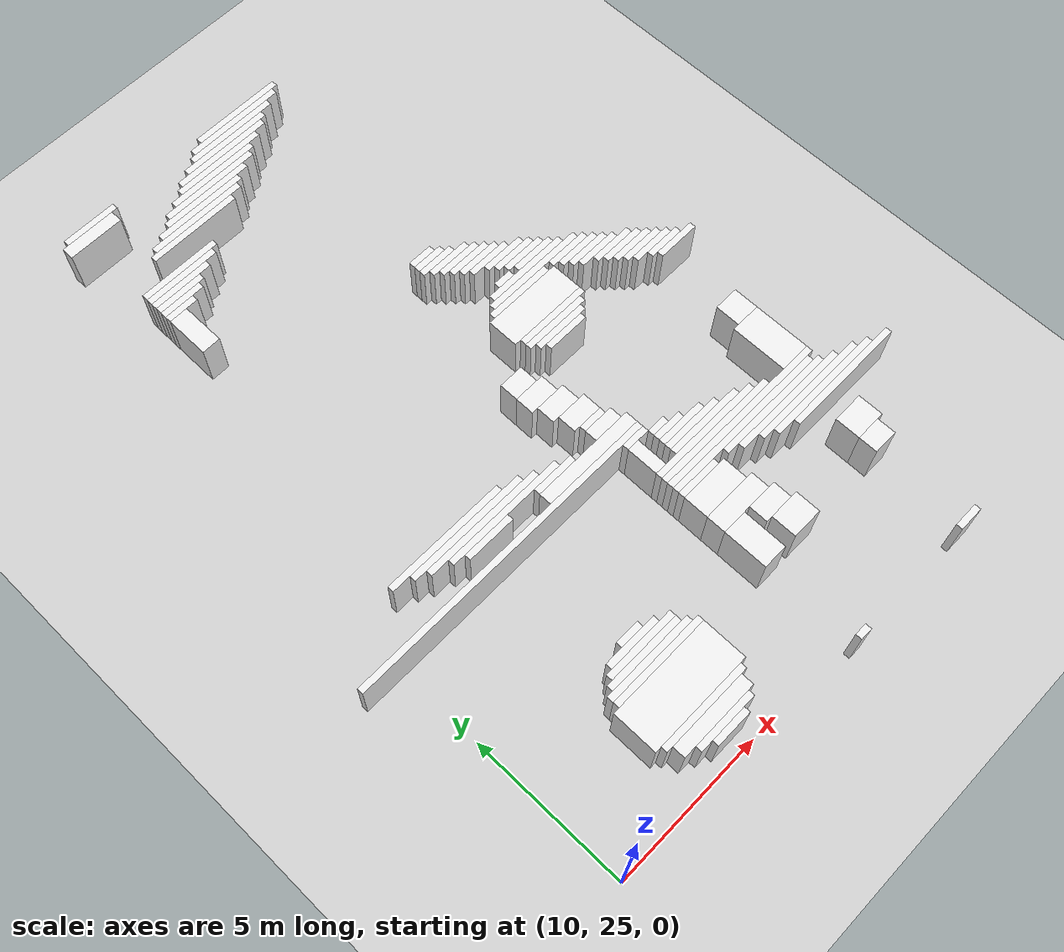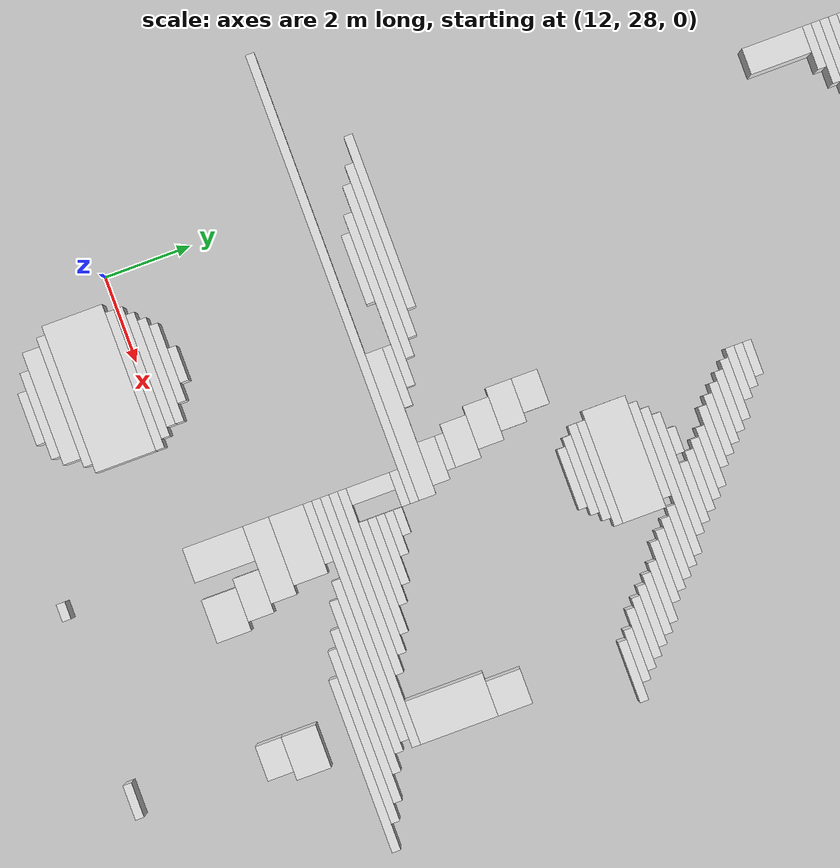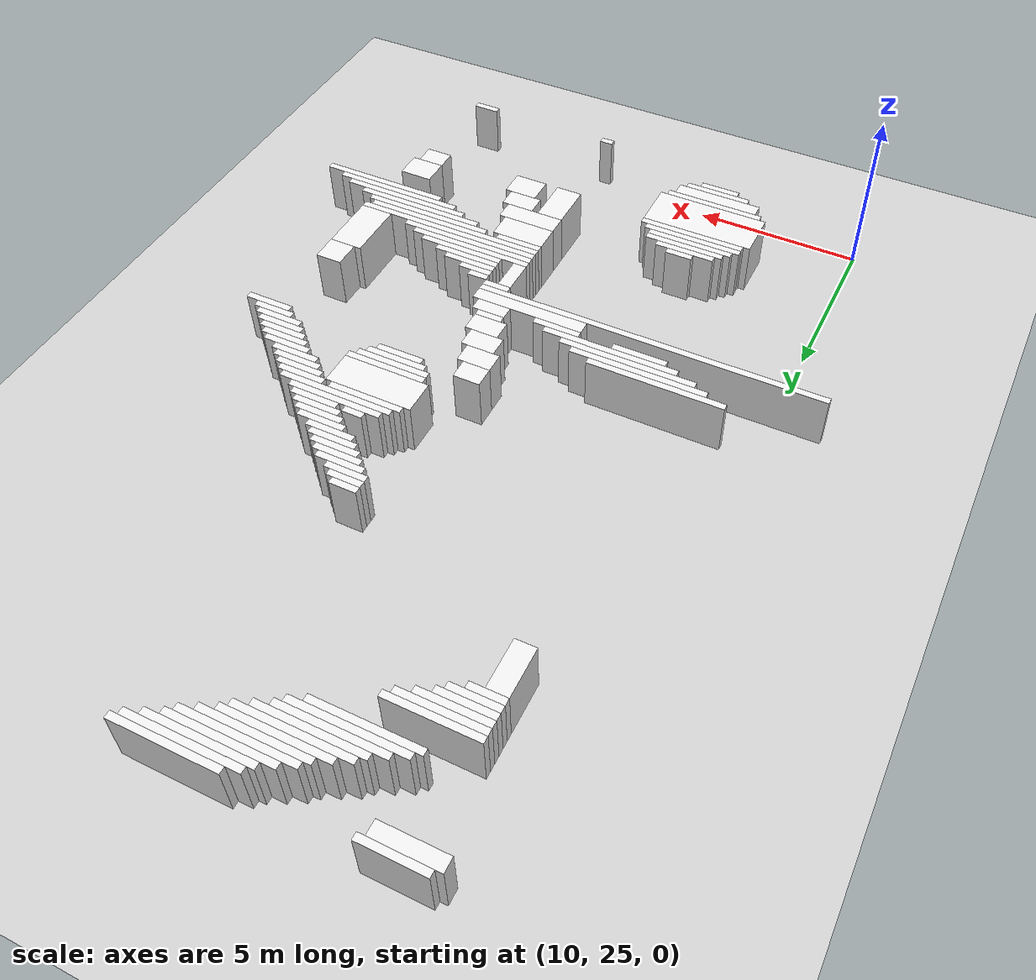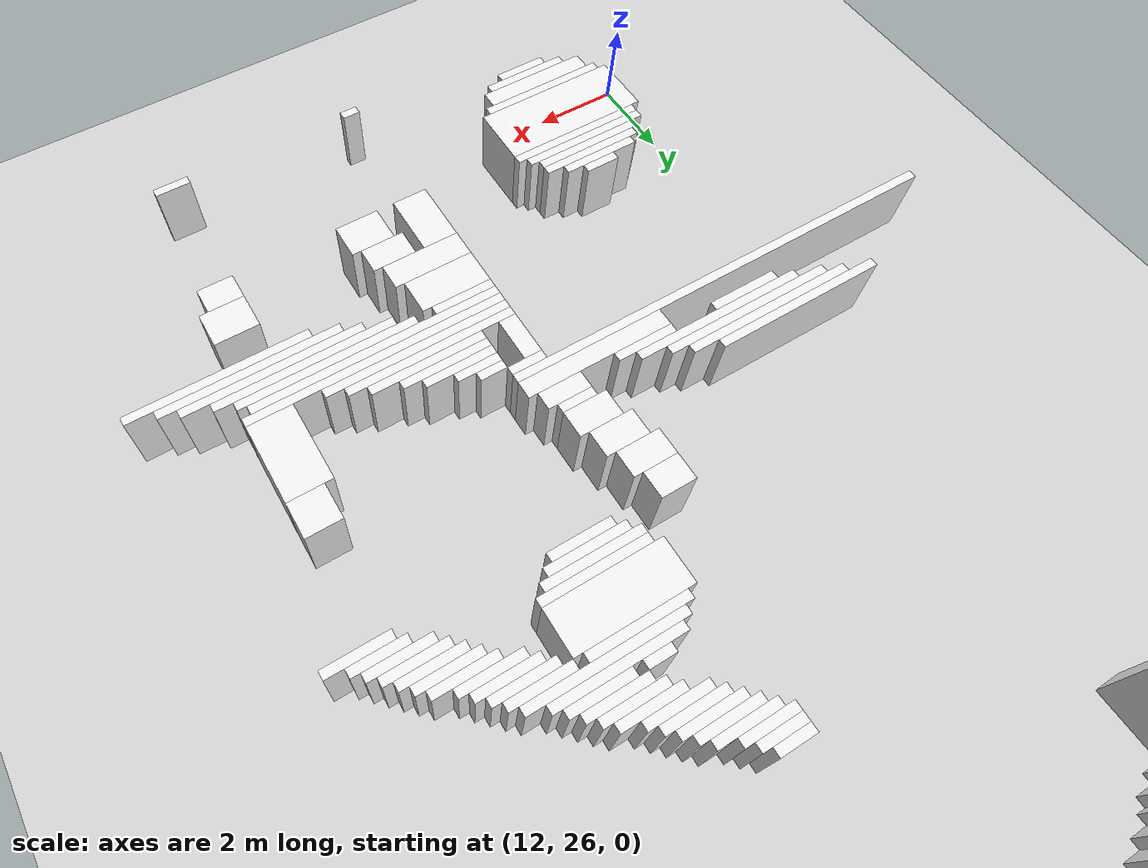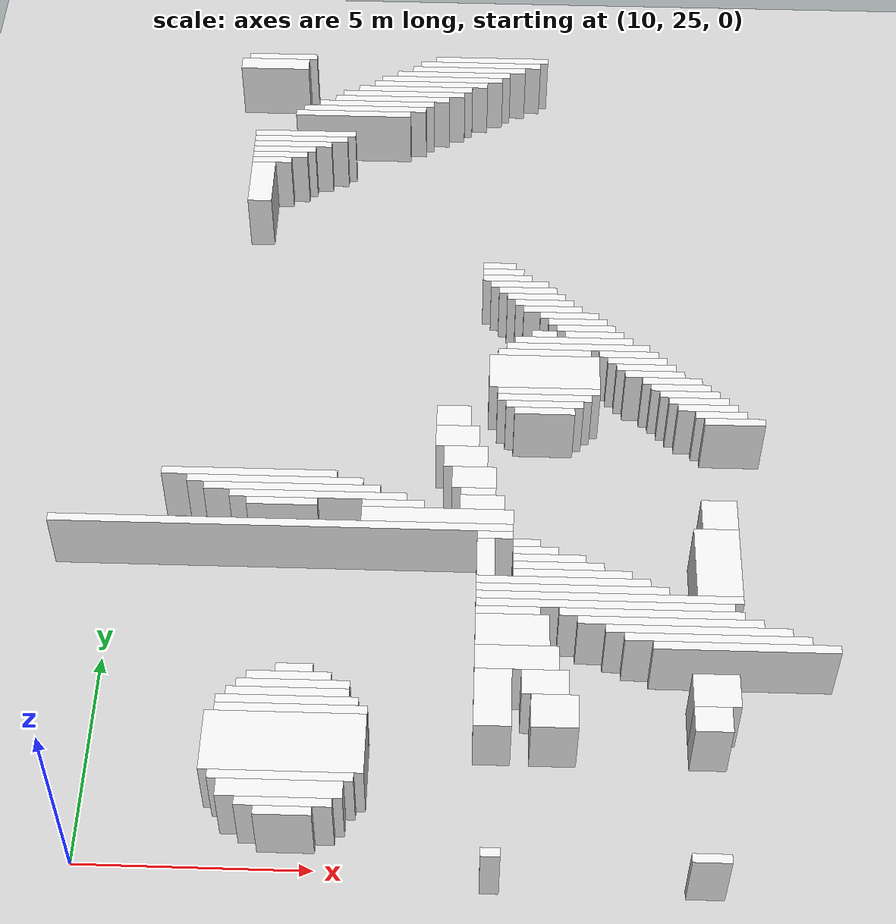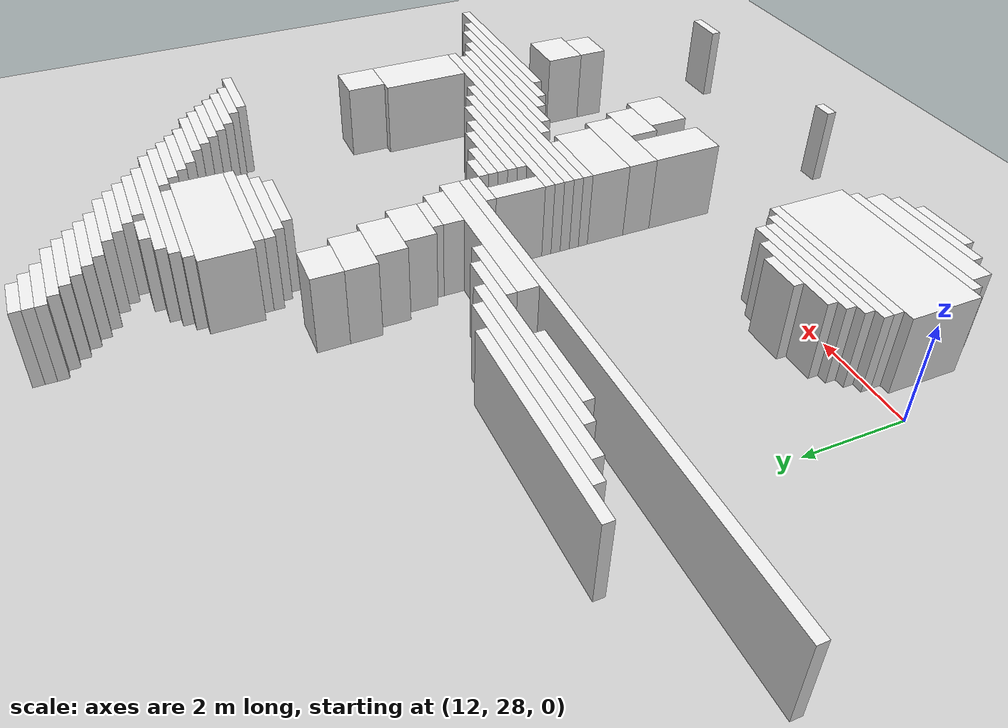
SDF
<sdf version="1.7">
 <world name="default">
  <model name="ground_plane">
   <static>1</static>
   <link name="link">
    <collision name="collision">
     <geometry><plane><normal>0 0 1</normal><size>120 120</size></plane></geometry>
    </collision>
    <visual name="visual">
     <geometry><plane><normal>0 0 1</normal><size>120 120</size></plane></geometry>
     <material>
      <script><uri>file://media/materials/scripts/gazebo.material</uri><name>Gazebo/Grey</name></script>
     </material>
    </visual>
   </link>
  </model>
  <model name="random_complex_02_model">
   <static>1</static>
   <link name="obs_4">
    <pose>12.7000 48.3000 0.8000 0 0 0</pose>
    <collision name="obs_4_col"><geometry><box><size>1.8000 0.2000 1.6000</size></box></geometry></collision>
    <visual name="obs_4_vis">
     <geometry><box><size>1.8000 0.2000 1.6000</size></box></geometry>
     <material>
      <script><uri>file://media/materials/scripts/gazebo.material</uri><name>Gazebo/White</name></script>
     </material>
    </visual>
   </link>
   <link name="obs_5">
    <pose>18.3000 48.3000 0.8000 0 0 0</pose>
    <collision name="obs_5_col"><geometry><box><size>3.0000 0.2000 1.6000</size></box></geometry></collision>
    <visual name="obs_5_vis">
     <geometry><box><size>3.0000 0.2000 1.6000</size></box></geometry>
     <material>
      <script><uri>file://media/materials/scripts/gazebo.material</uri><name>Gazebo/White</name></script>
     </material>
    </visual>
   </link>
   <link name="obs_9">
    <pose>18.0000 48.1000 0.8000 0 0 0</pose>
    <collision name="obs_9_col"><geometry><box><size>3.2000 0.2000 1.6000</size></box></geometry></collision>
    <visual name="obs_9_vis">
     <geometry><box><size>3.2000 0.2000 1.6000</size></box></geometry>
     <material>
      <script><uri>file://media/materials/scripts/gazebo.material</uri><name>Gazebo/White</name></script>
     </material>
    </visual>
   </link>
   <link name="obs_11">
    <pose>12.5000 48.0000 0.8000 0 0 0</pose>
    <collision name="obs_11_col"><geometry><box><size>1.8000 0.4000 1.6000</size></box></geometry></collision>
    <visual name="obs_11_vis">
     <geometry><box><size>1.8000 0.4000 1.6000</size></box></geometry>
     <material>
      <script><uri>file://media/materials/scripts/gazebo.material</uri><name>Gazebo/White</name></script>
     </material>
    </visual>
   </link>
   <link name="obs_16">
    <pose>17.7000 47.9000 0.8000 0 0 0</pose>
    <collision name="obs_16_col"><geometry><box><size>3.0000 0.2000 1.6000</size></box></geometry></collision>
    <visual name="obs_16_vis">
     <geometry><box><size>3.0000 0.2000 1.6000</size></box></geometry>
     <material>
      <script><uri>file://media/materials/scripts/gazebo.material</uri><name>Gazebo/White</name></script>
     </material>
    </visual>
   </link>
   <link name="obs_23">
    <pose>17.3000 47.7000 0.8000 0 0 0</pose>
    <collision name="obs_23_col"><geometry><box><size>3.0000 0.2000 1.6000</size></box></geometry></collision>
    <visual name="obs_23_vis">
     <geometry><box><size>3.0000 0.2000 1.6000</size></box></geometry>
     <material>
      <script><uri>file://media/materials/scripts/gazebo.material</uri><name>Gazebo/White</name></script>
     </material>
    </visual>
   </link>
   <link name="obs_31">
    <pose>17.0000 47.5000 0.8000 0 0 0</pose>
    <collision name="obs_31_col"><geometry><box><size>3.2000 0.2000 1.6000</size></box></geometry></collision>
    <visual name="obs_31_vis">
     <geometry><box><size>3.2000 0.2000 1.6000</size></box></geometry>
     <material>
      <script><uri>file://media/materials/scripts/gazebo.material</uri><name>Gazebo/White</name></script>
     </material>
    </visual>
   </link>
   <link name="obs_38">
    <pose>16.7000 47.3000 0.8000 0 0 0</pose>
    <collision name="obs_38_col"><geometry><box><size>3.0000 0.2000 1.6000</size></box></geometry></collision>
    <visual name="obs_38_vis">
     <geometry><box><size>3.0000 0.2000 1.6000</size></box></geometry>
     <material>
      <script><uri>file://media/materials/scripts/gazebo.material</uri><name>Gazebo/White</name></script>
     </material>
    </visual>
   </link>
   <link name="obs_45">
    <pose>16.3000 47.1000 0.8000 0 0 0</pose>
    <collision name="obs_45_col"><geometry><box><size>3.0000 0.2000 1.6000</size></box></geometry></collision>
    <visual name="obs_45_vis">
     <geometry><box><size>3.0000 0.2000 1.6000</size></box></geometry>
     <material>
      <script><uri>file://media/materials/scripts/gazebo.material</uri><name>Gazebo/White</name></script>
     </material>
    </visual>
   </link>
   <link name="obs_51">
    <pose>16.0000 46.9000 0.8000 0 0 0</pose>
    <collision name="obs_51_col"><geometry><box><size>3.2000 0.2000 1.6000</size></box></geometry></collision>
    <visual name="obs_51_vis">
     <geometry><box><size>3.2000 0.2000 1.6000</size></box></geometry>
     <material>
      <script><uri>file://media/materials/scripts/gazebo.material</uri><name>Gazebo/White</name></script>
     </material>
    </visual>
   </link>
   <link name="obs_58">
    <pose>15.7000 46.7000 0.8000 0 0 0</pose>
    <collision name="obs_58_col"><geometry><box><size>3.0000 0.2000 1.6000</size></box></geometry></collision>
    <visual name="obs_58_vis">
     <geometry><box><size>3.0000 0.2000 1.6000</size></box></geometry>
     <material>
      <script><uri>file://media/materials/scripts/gazebo.material</uri><name>Gazebo/White</name></script>
     </material>
    </visual>
   </link>
   <link name="obs_65">
    <pose>15.3000 46.5000 0.8000 0 0 0</pose>
    <collision name="obs_65_col"><geometry><box><size>3.0000 0.2000 1.6000</size></box></geometry></collision>
    <visual name="obs_65_vis">
     <geometry><box><size>3.0000 0.2000 1.6000</size></box></geometry>
     <material>
      <script><uri>file://media/materials/scripts/gazebo.material</uri><name>Gazebo/White</name></script>
     </material>
    </visual>
   </link>
   <link name="obs_73">
    <pose>15.0000 46.3000 0.8000 0 0 0</pose>
    <collision name="obs_73_col"><geometry><box><size>3.2000 0.2000 1.6000</size></box></geometry></collision>
    <visual name="obs_73_vis">
     <geometry><box><size>3.2000 0.2000 1.6000</size></box></geometry>
     <material>
      <script><uri>file://media/materials/scripts/gazebo.material</uri><name>Gazebo/White</name></script>
     </material>
    </visual>
   </link>
   <link name="obs_81">
    <pose>14.7000 46.1000 0.8000 0 0 0</pose>
    <collision name="obs_81_col"><geometry><box><size>3.0000 0.2000 1.6000</size></box></geometry></collision>
    <visual name="obs_81_vis">
     <geometry><box><size>3.0000 0.2000 1.6000</size></box></geometry>
     <material>
      <script><uri>file://media/materials/scripts/gazebo.material</uri><name>Gazebo/White</name></script>
     </material>
    </visual>
   </link>
   <link name="obs_113">
    <pose>13.5000 45.3000 0.8000 0 0 0</pose>
    <collision name="obs_113_col"><geometry><box><size>2.6000 0.2000 1.6000</size></box></geometry></collision>
    <visual name="obs_113_vis">
     <geometry><box><size>2.6000 0.2000 1.6000</size></box></geometry>
     <material>
      <script><uri>file://media/materials/scripts/gazebo.material</uri><name>Gazebo/White</name></script>
     </material>
    </visual>
   </link>
   <link name="obs_124">
    <pose>13.4000 45.1000 0.8000 0 0 0</pose>
    <collision name="obs_124_col"><geometry><box><size>2.4000 0.2000 1.6000</size></box></geometry></collision>
    <visual name="obs_124_vis">
     <geometry><box><size>2.4000 0.2000 1.6000</size></box></geometry>
     <material>
      <script><uri>file://media/materials/scripts/gazebo.material</uri><name>Gazebo/White</name></script>
     </material>
    </visual>
   </link>
   <link name="obs_132">
    <pose>13.2000 44.9000 0.8000 0 0 0</pose>
    <collision name="obs_132_col"><geometry><box><size>2.0000 0.2000 1.6000</size></box></geometry></collision>
    <visual name="obs_132_vis">
     <geometry><box><size>2.0000 0.2000 1.6000</size></box></geometry>
     <material>
      <script><uri>file://media/materials/scripts/gazebo.material</uri><name>Gazebo/White</name></script>
     </material>
    </visual>
   </link>
   <link name="obs_140">
    <pose>13.0000 44.7000 0.8000 0 0 0</pose>
    <collision name="obs_140_col"><geometry><box><size>1.6000 0.2000 1.6000</size></box></geometry></collision>
    <visual name="obs_140_vis">
     <geometry><box><size>1.6000 0.2000 1.6000</size></box></geometry>
     <material>
      <script><uri>file://media/materials/scripts/gazebo.material</uri><name>Gazebo/White</name></script>
     </material>
    </visual>
   </link>
   <link name="obs_148">
    <pose>12.9000 44.5000 0.8000 0 0 0</pose>
    <collision name="obs_148_col"><geometry><box><size>1.4000 0.2000 1.6000</size></box></geometry></collision>
    <visual name="obs_148_vis">
     <geometry><box><size>1.4000 0.2000 1.6000</size></box></geometry>
     <material>
      <script><uri>file://media/materials/scripts/gazebo.material</uri><name>Gazebo/White</name></script>
     </material>
    </visual>
   </link>
   <link name="obs_154">
    <pose>12.7000 44.3000 0.8000 0 0 0</pose>
    <collision name="obs_154_col"><geometry><box><size>1.0000 0.2000 1.6000</size></box></geometry></collision>
    <visual name="obs_154_vis">
     <geometry><box><size>1.0000 0.2000 1.6000</size></box></geometry>
     <material>
      <script><uri>file://media/materials/scripts/gazebo.material</uri><name>Gazebo/White</name></script>
     </material>
    </visual>
   </link>
   <link name="obs_200">
    <pose>12.5000 43.5000 0.8000 0 0 0</pose>
    <collision name="obs_200_col"><geometry><box><size>0.6000 1.4000 1.6000</size></box></geometry></collision>
    <visual name="obs_200_vis">
     <geometry><box><size>0.6000 1.4000 1.6000</size></box></geometry>
     <material>
      <script><uri>file://media/materials/scripts/gazebo.material</uri><name>Gazebo/White</name></script>
     </material>
    </visual>
   </link>
   <link name="obs_295">
    <pose>18.6000 40.7000 0.8000 0 0 0</pose>
    <collision name="obs_295_col"><geometry><box><size>0.8000 0.2000 1.6000</size></box></geometry></collision>
    <visual name="obs_295_vis">
     <geometry><box><size>0.8000 0.2000 1.6000</size></box></geometry>
     <material>
      <script><uri>file://media/materials/scripts/gazebo.material</uri><name>Gazebo/White</name></script>
     </material>
    </visual>
   </link>
   <link name="obs_307">
    <pose>18.7000 40.5000 0.8000 0 0 0</pose>
    <collision name="obs_307_col"><geometry><box><size>1.0000 0.2000 1.6000</size></box></geometry></collision>
    <visual name="obs_307_vis">
     <geometry><box><size>1.0000 0.2000 1.6000</size></box></geometry>
     <material>
      <script><uri>file://media/materials/scripts/gazebo.material</uri><name>Gazebo/White</name></script>
     </material>
    </visual>
   </link>
   <link name="obs_315">
    <pose>18.8000 40.3000 0.8000 0 0 0</pose>
    <collision name="obs_315_col"><geometry><box><size>1.2000 0.2000 1.6000</size></box></geometry></collision>
    <visual name="obs_315_vis">
     <geometry><box><size>1.2000 0.2000 1.6000</size></box></geometry>
     <material>
      <script><uri>file://media/materials/scripts/gazebo.material</uri><name>Gazebo/White</name></script>
     </material>
    </visual>
   </link>
   <link name="obs_327">
    <pose>19.1000 40.1000 0.8000 0 0 0</pose>
    <collision name="obs_327_col"><geometry><box><size>1.4000 0.2000 1.6000</size></box></geometry></collision>
    <visual name="obs_327_vis">
     <geometry><box><size>1.4000 0.2000 1.6000</size></box></geometry>
     <material>
      <script><uri>file://media/materials/scripts/gazebo.material</uri><name>Gazebo/White</name></script>
     </material>
    </visual>
   </link>
   <link name="obs_336">
    <pose>19.3000 39.9000 0.8000 0 0 0</pose>
    <collision name="obs_336_col"><geometry><box><size>1.4000 0.2000 1.6000</size></box></geometry></collision>
    <visual name="obs_336_vis">
     <geometry><box><size>1.4000 0.2000 1.6000</size></box></geometry>
     <material>
      <script><uri>file://media/materials/scripts/gazebo.material</uri><name>Gazebo/White</name></script>
     </material>
    </visual>
   </link>
   <link name="obs_342">
    <pose>19.5000 39.7000 0.8000 0 0 0</pose>
    <collision name="obs_342_col"><geometry><box><size>1.4000 0.2000 1.6000</size></box></geometry></collision>
    <visual name="obs_342_vis">
     <geometry><box><size>1.4000 0.2000 1.6000</size></box></geometry>
     <material>
      <script><uri>file://media/materials/scripts/gazebo.material</uri><name>Gazebo/White</name></script>
     </material>
    </visual>
   </link>
   <link name="obs_350">
    <pose>19.7000 39.5000 0.8000 0 0 0</pose>
    <collision name="obs_350_col"><geometry><box><size>1.4000 0.2000 1.6000</size></box></geometry></collision>
    <visual name="obs_350_vis">
     <geometry><box><size>1.4000 0.2000 1.6000</size></box></geometry>
     <material>
      <script><uri>file://media/materials/scripts/gazebo.material</uri><name>Gazebo/White</name></script>
     </material>
    </visual>
   </link>
   <link name="obs_360">
    <pose>19.9000 39.3000 0.8000 0 0 0</pose>
    <collision name="obs_360_col"><geometry><box><size>1.4000 0.2000 1.6000</size></box></geometry></collision>
    <visual name="obs_360_vis">
     <geometry><box><size>1.4000 0.2000 1.6000</size></box></geometry>
     <material>
      <script><uri>file://media/materials/scripts/gazebo.material</uri><name>Gazebo/White</name></script>
     </material>
    </visual>
   </link>
   <link name="obs_367">
    <pose>20.3000 39.1000 0.8000 0 0 0</pose>
    <collision name="obs_367_col"><geometry><box><size>1.4000 0.2000 1.6000</size></box></geometry></collision>
    <visual name="obs_367_vis">
     <geometry><box><size>1.4000 0.2000 1.6000</size></box></geometry>
     <material>
      <script><uri>file://media/materials/scripts/gazebo.material</uri><name>Gazebo/White</name></script>
     </material>
    </visual>
   </link>
   <link name="obs_377">
    <pose>20.5000 38.9000 0.8000 0 0 0</pose>
    <collision name="obs_377_col"><geometry><box><size>1.4000 0.2000 1.6000</size></box></geometry></collision>
    <visual name="obs_377_vis">
     <geometry><box><size>1.4000 0.2000 1.6000</size></box></geometry>
     <material>
      <script><uri>file://media/materials/scripts/gazebo.material</uri><name>Gazebo/White</name></script>
     </material>
    </visual>
   </link>
   <link name="obs_387">
    <pose>20.7000 38.7000 0.8000 0 0 0</pose>
    <collision name="obs_387_col"><geometry><box><size>1.4000 0.2000 1.6000</size></box></geometry></collision>
    <visual name="obs_387_vis">
     <geometry><box><size>1.4000 0.2000 1.6000</size></box></geometry>
     <material>
      <script><uri>file://media/materials/scripts/gazebo.material</uri><name>Gazebo/White</name></script>
     </material>
    </visual>
   </link>
   <link name="obs_396">
    <pose>19.7000 38.5000 0.8000 0 0 0</pose>
    <collision name="obs_396_col"><geometry><box><size>0.6000 0.2000 1.6000</size></box></geometry></collision>
    <visual name="obs_396_vis">
     <geometry><box><size>0.6000 0.2000 1.6000</size></box></geometry>
     <material>
      <script><uri>file://media/materials/scripts/gazebo.material</uri><name>Gazebo/White</name></script>
     </material>
    </visual>
   </link>
   <link name="obs_397">
    <pose>20.9000 38.5000 0.8000 0 0 0</pose>
    <collision name="obs_397_col"><geometry><box><size>1.4000 0.2000 1.6000</size></box></geometry></collision>
    <visual name="obs_397_vis">
     <geometry><box><size>1.4000 0.2000 1.6000</size></box></geometry>
     <material>
      <script><uri>file://media/materials/scripts/gazebo.material</uri><name>Gazebo/White</name></script>
     </material>
    </visual>
   </link>
   <link name="obs_407">
    <pose>20.4000 38.3000 0.8000 0 0 0</pose>
    <collision name="obs_407_col"><geometry><box><size>2.8000 0.2000 1.6000</size></box></geometry></collision>
    <visual name="obs_407_vis">
     <geometry><box><size>2.8000 0.2000 1.6000</size></box></geometry>
     <material>
      <script><uri>file://media/materials/scripts/gazebo.material</uri><name>Gazebo/White</name></script>
     </material>
    </visual>
   </link>
   <link name="obs_415">
    <pose>20.5000 38.1000 0.8000 0 0 0</pose>
    <collision name="obs_415_col"><geometry><box><size>3.4000 0.2000 1.6000</size></box></geometry></collision>
    <visual name="obs_415_vis">
     <geometry><box><size>3.4000 0.2000 1.6000</size></box></geometry>
     <material>
      <script><uri>file://media/materials/scripts/gazebo.material</uri><name>Gazebo/White</name></script>
     </material>
    </visual>
   </link>
   <link name="obs_424">
    <pose>19.7000 37.9000 0.8000 0 0 0</pose>
    <collision name="obs_424_col"><geometry><box><size>2.2000 0.2000 1.6000</size></box></geometry></collision>
    <visual name="obs_424_vis">
     <geometry><box><size>2.2000 0.2000 1.6000</size></box></geometry>
     <material>
      <script><uri>file://media/materials/scripts/gazebo.material</uri><name>Gazebo/White</name></script>
     </material>
    </visual>
   </link>
   <link name="obs_425">
    <pose>21.7000 37.9000 0.8000 0 0 0</pose>
    <collision name="obs_425_col"><geometry><box><size>1.4000 0.2000 1.6000</size></box></geometry></collision>
    <visual name="obs_425_vis">
     <geometry><box><size>1.4000 0.2000 1.6000</size></box></geometry>
     <material>
      <script><uri>file://media/materials/scripts/gazebo.material</uri><name>Gazebo/White</name></script>
     </material>
    </visual>
   </link>
   <link name="obs_433">
    <pose>21.9000 37.7000 0.8000 0 0 0</pose>
    <collision name="obs_433_col"><geometry><box><size>1.4000 0.2000 1.6000</size></box></geometry></collision>
    <visual name="obs_433_vis">
     <geometry><box><size>1.4000 0.2000 1.6000</size></box></geometry>
     <material>
      <script><uri>file://media/materials/scripts/gazebo.material</uri><name>Gazebo/White</name></script>
     </material>
    </visual>
   </link>
   <link name="obs_440">
    <pose>22.1000 37.5000 0.8000 0 0 0</pose>
    <collision name="obs_440_col"><geometry><box><size>1.4000 0.2000 1.6000</size></box></geometry></collision>
    <visual name="obs_440_vis">
     <geometry><box><size>1.4000 0.2000 1.6000</size></box></geometry>
     <material>
      <script><uri>file://media/materials/scripts/gazebo.material</uri><name>Gazebo/White</name></script>
     </material>
    </visual>
   </link>
   <link name="obs_447">
    <pose>22.3000 37.3000 0.8000 0 0 0</pose>
    <collision name="obs_447_col"><geometry><box><size>1.4000 0.2000 1.6000</size></box></geometry></collision>
    <visual name="obs_447_vis">
     <geometry><box><size>1.4000 0.2000 1.6000</size></box></geometry>
     <material>
      <script><uri>file://media/materials/scripts/gazebo.material</uri><name>Gazebo/White</name></script>
     </material>
    </visual>
   </link>
   <link name="obs_453">
    <pose>22.7000 37.1000 0.8000 0 0 0</pose>
    <collision name="obs_453_col"><geometry><box><size>1.4000 0.2000 1.6000</size></box></geometry></collision>
    <visual name="obs_453_vis">
     <geometry><box><size>1.4000 0.2000 1.6000</size></box></geometry>
     <material>
      <script><uri>file://media/materials/scripts/gazebo.material</uri><name>Gazebo/White</name></script>
     </material>
    </visual>
   </link>
   <link name="obs_454">
    <pose>19.7000 37.3000 0.8000 0 0 0</pose>
    <collision name="obs_454_col"><geometry><box><size>2.6000 1.0000 1.6000</size></box></geometry></collision>
    <visual name="obs_454_vis">
     <geometry><box><size>2.6000 1.0000 1.6000</size></box></geometry>
     <material>
      <script><uri>file://media/materials/scripts/gazebo.material</uri><name>Gazebo/White</name></script>
     </material>
    </visual>
   </link>
   <link name="obs_461">
    <pose>22.9000 36.9000 0.8000 0 0 0</pose>
    <collision name="obs_461_col"><geometry><box><size>1.4000 0.2000 1.6000</size></box></geometry></collision>
    <visual name="obs_461_vis">
     <geometry><box><size>1.4000 0.2000 1.6000</size></box></geometry>
     <material>
      <script><uri>file://media/materials/scripts/gazebo.material</uri><name>Gazebo/White</name></script>
     </material>
    </visual>
   </link>
   <link name="obs_466">
    <pose>19.8000 36.7000 0.8000 0 0 0</pose>
    <collision name="obs_466_col"><geometry><box><size>2.4000 0.2000 1.6000</size></box></geometry></collision>
    <visual name="obs_466_vis">
     <geometry><box><size>2.4000 0.2000 1.6000</size></box></geometry>
     <material>
      <script><uri>file://media/materials/scripts/gazebo.material</uri><name>Gazebo/White</name></script>
     </material>
    </visual>
   </link>
   <link name="obs_467">
    <pose>23.1000 36.7000 0.8000 0 0 0</pose>
    <collision name="obs_467_col"><geometry><box><size>1.4000 0.2000 1.6000</size></box></geometry></collision>
    <visual name="obs_467_vis">
     <geometry><box><size>1.4000 0.2000 1.6000</size></box></geometry>
     <material>
      <script><uri>file://media/materials/scripts/gazebo.material</uri><name>Gazebo/White</name></script>
     </material>
    </visual>
   </link>
   <link name="obs_474">
    <pose>19.7000 36.5000 0.8000 0 0 0</pose>
    <collision name="obs_474_col"><geometry><box><size>2.2000 0.2000 1.6000</size></box></geometry></collision>
    <visual name="obs_474_vis">
     <geometry><box><size>2.2000 0.2000 1.6000</size></box></geometry>
     <material>
      <script><uri>file://media/materials/scripts/gazebo.material</uri><name>Gazebo/White</name></script>
     </material>
    </visual>
   </link>
   <link name="obs_475">
    <pose>23.3000 36.5000 0.8000 0 0 0</pose>
    <collision name="obs_475_col"><geometry><box><size>1.4000 0.2000 1.6000</size></box></geometry></collision>
    <visual name="obs_475_vis">
     <geometry><box><size>1.4000 0.2000 1.6000</size></box></geometry>
     <material>
      <script><uri>file://media/materials/scripts/gazebo.material</uri><name>Gazebo/White</name></script>
     </material>
    </visual>
   </link>
   <link name="obs_485">
    <pose>19.7000 36.3000 0.8000 0 0 0</pose>
    <collision name="obs_485_col"><geometry><box><size>1.8000 0.2000 1.6000</size></box></geometry></collision>
    <visual name="obs_485_vis">
     <geometry><box><size>1.8000 0.2000 1.6000</size></box></geometry>
     <material>
      <script><uri>file://media/materials/scripts/gazebo.material</uri><name>Gazebo/White</name></script>
     </material>
    </visual>
   </link>
   <link name="obs_486">
    <pose>23.5000 36.3000 0.8000 0 0 0</pose>
    <collision name="obs_486_col"><geometry><box><size>1.4000 0.2000 1.6000</size></box></geometry></collision>
    <visual name="obs_486_vis">
     <geometry><box><size>1.4000 0.2000 1.6000</size></box></geometry>
     <material>
      <script><uri>file://media/materials/scripts/gazebo.material</uri><name>Gazebo/White</name></script>
     </material>
    </visual>
   </link>
   <link name="obs_495">
    <pose>19.7000 36.1000 0.8000 0 0 0</pose>
    <collision name="obs_495_col"><geometry><box><size>1.4000 0.2000 1.6000</size></box></geometry></collision>
    <visual name="obs_495_vis">
     <geometry><box><size>1.4000 0.2000 1.6000</size></box></geometry>
     <material>
      <script><uri>file://media/materials/scripts/gazebo.material</uri><name>Gazebo/White</name></script>
     </material>
    </visual>
   </link>
   <link name="obs_496">
    <pose>23.8000 36.1000 0.8000 0 0 0</pose>
    <collision name="obs_496_col"><geometry><box><size>1.2000 0.2000 1.6000</size></box></geometry></collision>
    <visual name="obs_496_vis">
     <geometry><box><size>1.2000 0.2000 1.6000</size></box></geometry>
     <material>
      <script><uri>file://media/materials/scripts/gazebo.material</uri><name>Gazebo/White</name></script>
     </material>
    </visual>
   </link>
   <link name="obs_505">
    <pose>24.1000 35.9000 0.8000 0 0 0</pose>
    <collision name="obs_505_col"><geometry><box><size>1.4000 0.2000 1.6000</size></box></geometry></collision>
    <visual name="obs_505_vis">
     <geometry><box><size>1.4000 0.2000 1.6000</size></box></geometry>
     <material>
      <script><uri>file://media/materials/scripts/gazebo.material</uri><name>Gazebo/White</name></script>
     </material>
    </visual>
   </link>
   <link name="obs_507">
    <pose>17.6000 35.9000 0.8000 0 0 0</pose>
    <collision name="obs_507_col"><geometry><box><size>0.8000 0.6000 1.6000</size></box></geometry></collision>
    <visual name="obs_507_vis">
     <geometry><box><size>0.8000 0.6000 1.6000</size></box></geometry>
     <material>
      <script><uri>file://media/materials/scripts/gazebo.material</uri><name>Gazebo/White</name></script>
     </material>
    </visual>
   </link>
   <link name="obs_535">
    <pose>17.7000 35.3000 0.8000 0 0 0</pose>
    <collision name="obs_535_col"><geometry><box><size>1.0000 0.6000 1.6000</size></box></geometry></collision>
    <visual name="obs_535_vis">
     <geometry><box><size>1.0000 0.6000 1.6000</size></box></geometry>
     <material>
      <script><uri>file://media/materials/scripts/gazebo.material</uri><name>Gazebo/White</name></script>
     </material>
    </visual>
   </link>
   <link name="obs_563">
    <pose>17.9000 34.7000 0.8000 0 0 0</pose>
    <collision name="obs_563_col"><geometry><box><size>1.0000 0.6000 1.6000</size></box></geometry></collision>
    <visual name="obs_563_vis">
     <geometry><box><size>1.0000 0.6000 1.6000</size></box></geometry>
     <material>
      <script><uri>file://media/materials/scripts/gazebo.material</uri><name>Gazebo/White</name></script>
     </material>
    </visual>
   </link>
   <link name="obs_584">
    <pose>13.0000 34.1000 0.8000 0 0 0</pose>
    <collision name="obs_584_col"><geometry><box><size>4.0000 0.2000 1.6000</size></box></geometry></collision>
    <visual name="obs_584_vis">
     <geometry><box><size>4.0000 0.2000 1.6000</size></box></geometry>
     <material>
      <script><uri>file://media/materials/scripts/gazebo.material</uri><name>Gazebo/White</name></script>
     </material>
    </visual>
   </link>
   <link name="obs_589">
    <pose>18.1000 34.1000 0.8000 0 0 0</pose>
    <collision name="obs_589_col"><geometry><box><size>1.0000 0.6000 1.6000</size></box></geometry></collision>
    <visual name="obs_589_vis">
     <geometry><box><size>1.0000 0.6000 1.6000</size></box></geometry>
     <material>
      <script><uri>file://media/materials/scripts/gazebo.material</uri><name>Gazebo/White</name></script>
     </material>
    </visual>
   </link>
   <link name="obs_593">
    <pose>13.6000 33.9000 0.8000 0 0 0</pose>
    <collision name="obs_593_col"><geometry><box><size>4.0000 0.2000 1.6000</size></box></geometry></collision>
    <visual name="obs_593_vis">
     <geometry><box><size>4.0000 0.2000 1.6000</size></box></geometry>
     <material>
      <script><uri>file://media/materials/scripts/gazebo.material</uri><name>Gazebo/White</name></script>
     </material>
    </visual>
   </link>
   <link name="obs_602">
    <pose>14.0000 33.7000 0.8000 0 0 0</pose>
    <collision name="obs_602_col"><geometry><box><size>4.0000 0.2000 1.6000</size></box></geometry></collision>
    <visual name="obs_602_vis">
     <geometry><box><size>4.0000 0.2000 1.6000</size></box></geometry>
     <material>
      <script><uri>file://media/materials/scripts/gazebo.material</uri><name>Gazebo/White</name></script>
     </material>
    </visual>
   </link>
   <link name="obs_603">
    <pose>18.2000 33.7000 0.8000 0 0 0</pose>
    <collision name="obs_603_col"><geometry><box><size>0.8000 0.2000 1.6000</size></box></geometry></collision>
    <visual name="obs_603_vis">
     <geometry><box><size>0.8000 0.2000 1.6000</size></box></geometry>
     <material>
      <script><uri>file://media/materials/scripts/gazebo.material</uri><name>Gazebo/White</name></script>
     </material>
    </visual>
   </link>
   <link name="obs_611">
    <pose>14.6000 33.5000 0.8000 0 0 0</pose>
    <collision name="obs_611_col"><geometry><box><size>4.0000 0.2000 1.6000</size></box></geometry></collision>
    <visual name="obs_611_vis">
     <geometry><box><size>4.0000 0.2000 1.6000</size></box></geometry>
     <material>
      <script><uri>file://media/materials/scripts/gazebo.material</uri><name>Gazebo/White</name></script>
     </material>
    </visual>
   </link>
   <link name="obs_616">
    <pose>18.3000 33.4000 0.8000 0 0 0</pose>
    <collision name="obs_616_col"><geometry><box><size>1.0000 0.4000 1.6000</size></box></geometry></collision>
    <visual name="obs_616_vis">
     <geometry><box><size>1.0000 0.4000 1.6000</size></box></geometry>
     <material>
      <script><uri>file://media/materials/scripts/gazebo.material</uri><name>Gazebo/White</name></script>
     </material>
    </visual>
   </link>
   <link name="obs_621">
    <pose>13.8000 33.3000 0.8000 0 0 0</pose>
    <collision name="obs_621_col"><geometry><box><size>1.6000 0.2000 1.6000</size></box></geometry></collision>
    <visual name="obs_621_vis">
     <geometry><box><size>1.6000 0.2000 1.6000</size></box></geometry>
     <material>
      <script><uri>file://media/materials/scripts/gazebo.material</uri><name>Gazebo/White</name></script>
     </material>
    </visual>
   </link>
   <link name="obs_622">
    <pose>16.3000 33.3000 0.8000 0 0 0</pose>
    <collision name="obs_622_col"><geometry><box><size>1.4000 0.2000 1.6000</size></box></geometry></collision>
    <visual name="obs_622_vis">
     <geometry><box><size>1.4000 0.2000 1.6000</size></box></geometry>
     <material>
      <script><uri>file://media/materials/scripts/gazebo.material</uri><name>Gazebo/White</name></script>
     </material>
    </visual>
   </link>
   <link name="obs_633">
    <pose>23.6000 33.2000 0.8000 0 0 0</pose>
    <collision name="obs_633_col"><geometry><box><size>0.8000 0.8000 1.6000</size></box></geometry></collision>
    <visual name="obs_633_vis">
     <geometry><box><size>0.8000 0.8000 1.6000</size></box></geometry>
     <material>
      <script><uri>file://media/materials/scripts/gazebo.material</uri><name>Gazebo/White</name></script>
     </material>
    </visual>
   </link>
   <link name="obs_635">
    <pose>17.3000 33.0000 0.8000 0 0 0</pose>
    <collision name="obs_635_col"><geometry><box><size>3.4000 0.4000 1.6000</size></box></geometry></collision>
    <visual name="obs_635_vis">
     <geometry><box><size>3.4000 0.4000 1.6000</size></box></geometry>
     <material>
      <script><uri>file://media/materials/scripts/gazebo.material</uri><name>Gazebo/White</name></script>
     </material>
    </visual>
   </link>
   <link name="obs_650">
    <pose>13.8000 32.7000 0.8000 0 0 0</pose>
    <collision name="obs_650_col"><geometry><box><size>10.4000 0.2000 1.6000</size></box></geometry></collision>
    <visual name="obs_650_vis">
     <geometry><box><size>10.4000 0.2000 1.6000</size></box></geometry>
     <material>
      <script><uri>file://media/materials/scripts/gazebo.material</uri><name>Gazebo/White</name></script>
     </material>
    </visual>
   </link>
   <link name="obs_657">
    <pose>18.6000 32.5000 0.8000 0 0 0</pose>
    <collision name="obs_657_col"><geometry><box><size>0.8000 0.2000 1.6000</size></box></geometry></collision>
    <visual name="obs_657_vis">
     <geometry><box><size>0.8000 0.2000 1.6000</size></box></geometry>
     <material>
      <script><uri>file://media/materials/scripts/gazebo.material</uri><name>Gazebo/White</name></script>
     </material>
    </visual>
   </link>
   <link name="obs_666">
    <pose>19.3000 32.3000 0.8000 0 0 0</pose>
    <collision name="obs_666_col"><geometry><box><size>0.6000 0.2000 1.6000</size></box></geometry></collision>
    <visual name="obs_666_vis">
     <geometry><box><size>0.6000 0.2000 1.6000</size></box></geometry>
     <material>
      <script><uri>file://media/materials/scripts/gazebo.material</uri><name>Gazebo/White</name></script>
     </material>
    </visual>
   </link>
   <link name="obs_675">
    <pose>19.5000 32.1000 0.8000 0 0 0</pose>
    <collision name="obs_675_col"><geometry><box><size>1.0000 0.2000 1.6000</size></box></geometry></collision>
    <visual name="obs_675_vis">
     <geometry><box><size>1.0000 0.2000 1.6000</size></box></geometry>
     <material>
      <script><uri>file://media/materials/scripts/gazebo.material</uri><name>Gazebo/White</name></script>
     </material>
    </visual>
   </link>
   <link name="obs_684">
    <pose>19.8000 31.9000 0.8000 0 0 0</pose>
    <collision name="obs_684_col"><geometry><box><size>1.6000 0.2000 1.6000</size></box></geometry></collision>
    <visual name="obs_684_vis">
     <geometry><box><size>1.6000 0.2000 1.6000</size></box></geometry>
     <material>
      <script><uri>file://media/materials/scripts/gazebo.material</uri><name>Gazebo/White</name></script>
     </material>
    </visual>
   </link>
   <link name="obs_694">
    <pose>20.0000 31.7000 0.8000 0 0 0</pose>
    <collision name="obs_694_col"><geometry><box><size>2.0000 0.2000 1.6000</size></box></geometry></collision>
    <visual name="obs_694_vis">
     <geometry><box><size>2.0000 0.2000 1.6000</size></box></geometry>
     <material>
      <script><uri>file://media/materials/scripts/gazebo.material</uri><name>Gazebo/White</name></script>
     </material>
    </visual>
   </link>
   <link name="obs_698">
    <pose>18.4000 31.9000 0.8000 0 0 0</pose>
    <collision name="obs_698_col"><geometry><box><size>0.4000 1.0000 1.6000</size></box></geometry></collision>
    <visual name="obs_698_vis">
     <geometry><box><size>0.4000 1.0000 1.6000</size></box></geometry>
     <material>
      <script><uri>file://media/materials/scripts/gazebo.material</uri><name>Gazebo/White</name></script>
     </material>
    </visual>
   </link>
   <link name="obs_705">
    <pose>20.3000 31.5000 0.8000 0 0 0</pose>
    <collision name="obs_705_col"><geometry><box><size>2.6000 0.2000 1.6000</size></box></geometry></collision>
    <visual name="obs_705_vis">
     <geometry><box><size>2.6000 0.2000 1.6000</size></box></geometry>
     <material>
      <script><uri>file://media/materials/scripts/gazebo.material</uri><name>Gazebo/White</name></script>
     </material>
    </visual>
   </link>
   <link name="obs_713">
    <pose>20.1000 31.3000 0.8000 0 0 0</pose>
    <collision name="obs_713_col"><geometry><box><size>3.8000 0.2000 1.6000</size></box></geometry></collision>
    <visual name="obs_713_vis">
     <geometry><box><size>3.8000 0.2000 1.6000</size></box></geometry>
     <material>
      <script><uri>file://media/materials/scripts/gazebo.material</uri><name>Gazebo/White</name></script>
     </material>
    </visual>
   </link>
   <link name="obs_717">
    <pose>23.5000 31.9000 0.8000 0 0 0</pose>
    <collision name="obs_717_col"><geometry><box><size>1.0000 1.8000 1.6000</size></box></geometry></collision>
    <visual name="obs_717_vis">
     <geometry><box><size>1.0000 1.8000 1.6000</size></box></geometry>
     <material>
      <script><uri>file://media/materials/scripts/gazebo.material</uri><name>Gazebo/White</name></script>
     </material>
    </visual>
   </link>
   <link name="obs_726">
    <pose>20.3000 31.1000 0.8000 0 0 0</pose>
    <collision name="obs_726_col"><geometry><box><size>4.2000 0.2000 1.6000</size></box></geometry></collision>
    <visual name="obs_726_vis">
     <geometry><box><size>4.2000 0.2000 1.6000</size></box></geometry>
     <material>
      <script><uri>file://media/materials/scripts/gazebo.material</uri><name>Gazebo/White</name></script>
     </material>
    </visual>
   </link>
   <link name="obs_735">
    <pose>21.1000 30.9000 0.8000 0 0 0</pose>
    <collision name="obs_735_col"><geometry><box><size>5.8000 0.2000 1.6000</size></box></geometry></collision>
    <visual name="obs_735_vis">
     <geometry><box><size>5.8000 0.2000 1.6000</size></box></geometry>
     <material>
      <script><uri>file://media/materials/scripts/gazebo.material</uri><name>Gazebo/White</name></script>
     </material>
    </visual>
   </link>
   <link name="obs_747">
    <pose>21.0000 30.7000 0.8000 0 0 0</pose>
    <collision name="obs_747_col"><geometry><box><size>5.6000 0.2000 1.6000</size></box></geometry></collision>
    <visual name="obs_747_vis">
     <geometry><box><size>5.6000 0.2000 1.6000</size></box></geometry>
     <material>
      <script><uri>file://media/materials/scripts/gazebo.material</uri><name>Gazebo/White</name></script>
     </material>
    </visual>
   </link>
   <link name="obs_756">
    <pose>18.9000 30.5000 0.8000 0 0 0</pose>
    <collision name="obs_756_col"><geometry><box><size>1.4000 0.2000 1.6000</size></box></geometry></collision>
    <visual name="obs_756_vis">
     <geometry><box><size>1.4000 0.2000 1.6000</size></box></geometry>
     <material>
      <script><uri>file://media/materials/scripts/gazebo.material</uri><name>Gazebo/White</name></script>
     </material>
    </visual>
   </link>
   <link name="obs_757">
    <pose>22.0000 30.5000 0.8000 0 0 0</pose>
    <collision name="obs_757_col"><geometry><box><size>4.0000 0.2000 1.6000</size></box></geometry></collision>
    <visual name="obs_757_vis">
     <geometry><box><size>4.0000 0.2000 1.6000</size></box></geometry>
     <material>
      <script><uri>file://media/materials/scripts/gazebo.material</uri><name>Gazebo/White</name></script>
     </material>
    </visual>
   </link>
   <link name="obs_763">
    <pose>22.4000 30.3000 0.8000 0 0 0</pose>
    <collision name="obs_763_col"><geometry><box><size>4.0000 0.2000 1.6000</size></box></geometry></collision>
    <visual name="obs_763_vis">
     <geometry><box><size>4.0000 0.2000 1.6000</size></box></geometry>
     <material>
      <script><uri>file://media/materials/scripts/gazebo.material</uri><name>Gazebo/White</name></script>
     </material>
    </visual>
   </link>
   <link name="obs_771">
    <pose>23.0000 30.1000 0.8000 0 0 0</pose>
    <collision name="obs_771_col"><geometry><box><size>4.0000 0.2000 1.6000</size></box></geometry></collision>
    <visual name="obs_771_vis">
     <geometry><box><size>4.0000 0.2000 1.6000</size></box></geometry>
     <material>
      <script><uri>file://media/materials/scripts/gazebo.material</uri><name>Gazebo/White</name></script>
     </material>
    </visual>
   </link>
   <link name="obs_778">
    <pose>23.4000 29.9000 0.8000 0 0 0</pose>
    <collision name="obs_778_col"><geometry><box><size>4.0000 0.2000 1.6000</size></box></geometry></collision>
    <visual name="obs_778_vis">
     <geometry><box><size>4.0000 0.2000 1.6000</size></box></geometry>
     <material>
      <script><uri>file://media/materials/scripts/gazebo.material</uri><name>Gazebo/White</name></script>
     </material>
    </visual>
   </link>
   <link name="obs_781">
    <pose>19.0000 30.0000 0.8000 0 0 0</pose>
    <collision name="obs_781_col"><geometry><box><size>1.6000 0.8000 1.6000</size></box></geometry></collision>
    <visual name="obs_781_vis">
     <geometry><box><size>1.6000 0.8000 1.6000</size></box></geometry>
     <material>
      <script><uri>file://media/materials/scripts/gazebo.material</uri><name>Gazebo/White</name></script>
     </material>
    </visual>
   </link>
   <link name="obs_789">
    <pose>24.0000 29.7000 0.8000 0 0 0</pose>
    <collision name="obs_789_col"><geometry><box><size>4.0000 0.2000 1.6000</size></box></geometry></collision>
    <visual name="obs_789_vis">
     <geometry><box><size>4.0000 0.2000 1.6000</size></box></geometry>
     <material>
      <script><uri>file://media/materials/scripts/gazebo.material</uri><name>Gazebo/White</name></script>
     </material>
    </visual>
   </link>
   <link name="obs_805">
    <pose>19.1000 29.3000 0.8000 0 0 0</pose>
    <collision name="obs_805_col"><geometry><box><size>1.8000 0.6000 1.6000</size></box></geometry></collision>
    <visual name="obs_805_vis">
     <geometry><box><size>1.8000 0.6000 1.6000</size></box></geometry>
     <material>
      <script><uri>file://media/materials/scripts/gazebo.material</uri><name>Gazebo/White</name></script>
     </material>
    </visual>
   </link>
   <link name="obs_822">
    <pose>14.4000 28.9000 0.8000 0 0 0</pose>
    <collision name="obs_822_col"><geometry><box><size>0.8000 0.2000 1.6000</size></box></geometry></collision>
    <visual name="obs_822_vis">
     <geometry><box><size>0.8000 0.2000 1.6000</size></box></geometry>
     <material>
      <script><uri>file://media/materials/scripts/gazebo.material</uri><name>Gazebo/White</name></script>
     </material>
    </visual>
   </link>
   <link name="obs_831">
    <pose>14.3000 28.7000 0.8000 0 0 0</pose>
    <collision name="obs_831_col"><geometry><box><size>1.8000 0.2000 1.6000</size></box></geometry></collision>
    <visual name="obs_831_vis">
     <geometry><box><size>1.8000 0.2000 1.6000</size></box></geometry>
     <material>
      <script><uri>file://media/materials/scripts/gazebo.material</uri><name>Gazebo/White</name></script>
     </material>
    </visual>
   </link>
   <link name="obs_835">
    <pose>19.7000 28.7000 0.8000 0 0 0</pose>
    <collision name="obs_835_col"><geometry><box><size>1.0000 0.6000 1.6000</size></box></geometry></collision>
    <visual name="obs_835_vis">
     <geometry><box><size>1.0000 0.6000 1.6000</size></box></geometry>
     <material>
      <script><uri>file://media/materials/scripts/gazebo.material</uri><name>Gazebo/White</name></script>
     </material>
    </visual>
   </link>
   <link name="obs_842">
    <pose>14.4000 28.5000 0.8000 0 0 0</pose>
    <collision name="obs_842_col"><geometry><box><size>2.4000 0.2000 1.6000</size></box></geometry></collision>
    <visual name="obs_842_vis">
     <geometry><box><size>2.4000 0.2000 1.6000</size></box></geometry>
     <material>
      <script><uri>file://media/materials/scripts/gazebo.material</uri><name>Gazebo/White</name></script>
     </material>
    </visual>
   </link>
   <link name="obs_845">
    <pose>23.3000 28.6000 0.8000 0 0 0</pose>
    <collision name="obs_845_col"><geometry><box><size>1.0000 0.8000 1.6000</size></box></geometry></collision>
    <visual name="obs_845_vis">
     <geometry><box><size>1.0000 0.8000 1.6000</size></box></geometry>
     <material>
      <script><uri>file://media/materials/scripts/gazebo.material</uri><name>Gazebo/White</name></script>
     </material>
    </visual>
   </link>
   <link name="obs_854">
    <pose>14.3000 28.3000 0.8000 0 0 0</pose>
    <collision name="obs_854_col"><geometry><box><size>2.6000 0.2000 1.6000</size></box></geometry></collision>
    <visual name="obs_854_vis">
     <geometry><box><size>2.6000 0.2000 1.6000</size></box></geometry>
     <material>
      <script><uri>file://media/materials/scripts/gazebo.material</uri><name>Gazebo/White</name></script>
     </material>
    </visual>
   </link>
   <link name="obs_861">
    <pose>14.3000 28.1000 0.8000 0 0 0</pose>
    <collision name="obs_861_col"><geometry><box><size>3.0000 0.2000 1.6000</size></box></geometry></collision>
    <visual name="obs_861_vis">
     <geometry><box><size>3.0000 0.2000 1.6000</size></box></geometry>
     <material>
      <script><uri>file://media/materials/scripts/gazebo.material</uri><name>Gazebo/White</name></script>
     </material>
    </visual>
   </link>
   <link name="obs_870">
    <pose>14.4000 27.9000 0.8000 0 0 0</pose>
    <collision name="obs_870_col"><geometry><box><size>3.2000 0.2000 1.6000</size></box></geometry></collision>
    <visual name="obs_870_vis">
     <geometry><box><size>3.2000 0.2000 1.6000</size></box></geometry>
     <material>
      <script><uri>file://media/materials/scripts/gazebo.material</uri><name>Gazebo/White</name></script>
     </material>
    </visual>
   </link>
   <link name="obs_874">
    <pose>18.6000 28.3000 0.8000 0 0 0</pose>
    <collision name="obs_874_col"><geometry><box><size>0.8000 1.4000 1.6000</size></box></geometry></collision>
    <visual name="obs_874_vis">
     <geometry><box><size>0.8000 1.4000 1.6000</size></box></geometry>
     <material>
      <script><uri>file://media/materials/scripts/gazebo.material</uri><name>Gazebo/White</name></script>
     </material>
    </visual>
   </link>
   <link name="obs_875">
    <pose>19.9000 28.0000 0.8000 0 0 0</pose>
    <collision name="obs_875_col"><geometry><box><size>1.0000 0.8000 1.6000</size></box></geometry></collision>
    <visual name="obs_875_vis">
     <geometry><box><size>1.0000 0.8000 1.6000</size></box></geometry>
     <material>
      <script><uri>file://media/materials/scripts/gazebo.material</uri><name>Gazebo/White</name></script>
     </material>
    </visual>
   </link>
   <link name="obs_877">
    <pose>23.2000 27.9000 0.8000 0 0 0</pose>
    <collision name="obs_877_col"><geometry><box><size>0.8000 0.6000 1.6000</size></box></geometry></collision>
    <visual name="obs_877_vis">
     <geometry><box><size>0.8000 0.6000 1.6000</size></box></geometry>
     <material>
      <script><uri>file://media/materials/scripts/gazebo.material</uri><name>Gazebo/White</name></script>
     </material>
    </visual>
   </link>
   <link name="obs_920">
    <pose>14.3000 27.1000 0.8000 0 0 0</pose>
    <collision name="obs_920_col"><geometry><box><size>3.4000 1.4000 1.6000</size></box></geometry></collision>
    <visual name="obs_920_vis">
     <geometry><box><size>3.4000 1.4000 1.6000</size></box></geometry>
     <material>
      <script><uri>file://media/materials/scripts/gazebo.material</uri><name>Gazebo/White</name></script>
     </material>
    </visual>
   </link>
   <link name="obs_934">
    <pose>14.3000 26.3000 0.8000 0 0 0</pose>
    <collision name="obs_934_col"><geometry><box><size>3.0000 0.2000 1.6000</size></box></geometry></collision>
    <visual name="obs_934_vis">
     <geometry><box><size>3.0000 0.2000 1.6000</size></box></geometry>
     <material>
      <script><uri>file://media/materials/scripts/gazebo.material</uri><name>Gazebo/White</name></script>
     </material>
    </visual>
   </link>
   <link name="obs_946">
    <pose>14.3000 26.0000 0.8000 0 0 0</pose>
    <collision name="obs_946_col"><geometry><box><size>2.6000 0.4000 1.6000</size></box></geometry></collision>
    <visual name="obs_946_vis">
     <geometry><box><size>2.6000 0.4000 1.6000</size></box></geometry>
     <material>
      <script><uri>file://media/materials/scripts/gazebo.material</uri><name>Gazebo/White</name></script>
     </material>
    </visual>
   </link>
   <link name="obs_959">
    <pose>14.4000 25.7000 0.8000 0 0 0</pose>
    <collision name="obs_959_col"><geometry><box><size>2.0000 0.2000 1.6000</size></box></geometry></collision>
    <visual name="obs_959_vis">
     <geometry><box><size>2.0000 0.2000 1.6000</size></box></geometry>
     <material>
      <script><uri>file://media/materials/scripts/gazebo.material</uri><name>Gazebo/White</name></script>
     </material>
    </visual>
   </link>
   <link name="obs_967">
    <pose>14.4000 25.5000 0.8000 0 0 0</pose>
    <collision name="obs_967_col"><geometry><box><size>1.2000 0.2000 1.6000</size></box></geometry></collision>
    <visual name="obs_967_vis">
     <geometry><box><size>1.2000 0.2000 1.6000</size></box></geometry>
     <material>
      <script><uri>file://media/materials/scripts/gazebo.material</uri><name>Gazebo/White</name></script>
     </material>
    </visual>
   </link>
   <link name="obs_1001">
    <pose>18.6000 24.7000 0.8000 0 0 0</pose>
    <collision name="obs_1001_col"><geometry><box><size>0.4000 0.2000 1.6000</size></box></geometry></collision>
    <visual name="obs_1001_vis">
     <geometry><box><size>0.4000 0.2000 1.6000</size></box></geometry>
     <material>
      <script><uri>file://media/materials/scripts/gazebo.material</uri><name>Gazebo/White</name></script>
     </material>
    </visual>
   </link>
   <link name="obs_1002">
    <pose>23.0000 24.7000 0.8000 0 0 0</pose>
    <collision name="obs_1002_col"><geometry><box><size>0.8000 0.2000 1.6000</size></box></geometry></collision>
    <visual name="obs_1002_vis">
     <geometry><box><size>0.8000 0.2000 1.6000</size></box></geometry>
     <material>
      <script><uri>file://media/materials/scripts/gazebo.material</uri><name>Gazebo/White</name></script>
     </material>
    </visual>
   </link>
  </model>
 </world>
</sdf>
